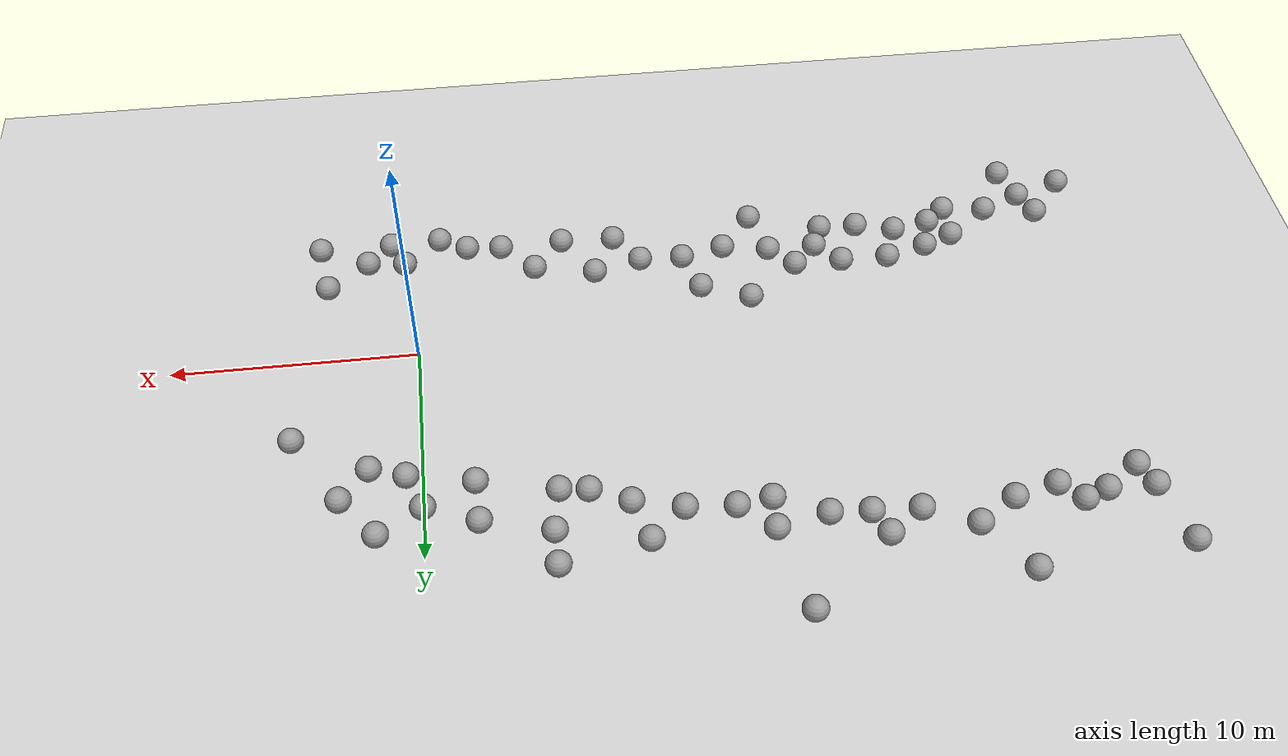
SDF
<sdf version="1.6">
 <world name="default">
  <model name="ground_plane">
   <static>1</static>
   <link name="link">
    <collision name="collision">
     <geometry><plane><normal>0 0 1</normal><size>100 100</size></plane></geometry>
     <surface><friction><ode><mu>100</mu><mu2>50</mu2></ode></friction></surface>
    </collision>
    <visual name="visual">
     <cast_shadows>0</cast_shadows>
     <geometry><plane><normal>0 0 1</normal><size>100 100</size></plane></geometry>
     <material>
      <script><uri>file://media/materials/scripts/gazebo.material</uri><name>Gazebo/Grey</name></script>
     </material>
    </visual>
   </link>
  </model>
  <model name="unit_sphere_0_clone_45">
   <pose>-24.6013 10.3687 0.5 0 -0 0</pose>
   <link name="link">
    <inertial>
     <mass>1</mass>
     <inertia><ixx>0.1</ixx><ixy>0</ixy><ixz>0</ixz><iyy>0.1</iyy><iyz>0</iyz><izz>0.1</izz></inertia>
    </inertial>
    <collision name="collision"><geometry><sphere><radius>0.5</radius></sphere></geometry></collision>
    <visual name="visual">
     <geometry><sphere><radius>0.5</radius></sphere></geometry>
     <material>
      <script><name>Gazebo/Grey</name><uri>file://media/materials/scripts/gazebo.material</uri></script>
     </material>
    </visual>
   </link>
  </model>
  <model name="unit_sphere_0_clone_46">
   <pose>-17.0385 11.0775 0.5 0 -0 0</pose>
   <link name="link">
    <inertial>
     <mass>1</mass>
     <inertia><ixx>0.1</ixx><ixy>0</ixy><ixz>0</ixz><iyy>0.1</iyy><iyz>0</iyz><izz>0.1</izz></inertia>
    </inertial>
    <collision name="collision"><geometry><sphere><radius>0.5</radius></sphere></geometry></collision>
    <visual name="visual">
     <geometry><sphere><radius>0.5</radius></sphere></geometry>
     <material>
      <script><name>Gazebo/Grey</name><uri>file://media/materials/scripts/gazebo.material</uri></script>
     </material>
    </visual>
   </link>
  </model>
  <model name="unit_sphere_0_clone_47">
   <pose>-8.29138 10.353 0.5 0 -0 0</pose>
   <link name="link">
    <inertial>
     <mass>1</mass>
     <inertia><ixx>0.1</ixx><ixy>0</ixy><ixz>0</ixz><iyy>0.1</iyy><iyz>0</iyz><izz>0.1</izz></inertia>
    </inertial>
    <collision name="collision"><geometry><sphere><radius>0.5</radius></sphere></geometry></collision>
    <visual name="visual">
     <geometry><sphere><radius>0.5</radius></sphere></geometry>
     <material>
      <script><name>Gazebo/Grey</name><uri>file://media/materials/scripts/gazebo.material</uri></script>
     </material>
    </visual>
   </link>
  </model>
  <model name="unit_sphere_0_clone_48">
   <pose>-2.06402 8.83003 0.5 0 -0 0</pose>
   <link name="link">
    <inertial>
     <mass>1</mass>
     <inertia><ixx>0.1</ixx><ixy>0</ixy><ixz>0</ixz><iyy>0.1</iyy><iyz>0</iyz><izz>0.1</izz></inertia>
    </inertial>
    <collision name="collision"><geometry><sphere><radius>0.5</radius></sphere></geometry></collision>
    <visual name="visual">
     <geometry><sphere><radius>0.5</radius></sphere></geometry>
     <material>
      <script><name>Gazebo/Grey</name><uri>file://media/materials/scripts/gazebo.material</uri></script>
     </material>
    </visual>
   </link>
  </model>
  <model name="unit_sphere_0_clone_49">
   <pose>3.12178 7.33825 0.5 0 -0 0</pose>
   <link name="link">
    <inertial>
     <mass>1</mass>
     <inertia><ixx>0.1</ixx><ixy>0</ixy><ixz>0</ixz><iyy>0.1</iyy><iyz>0</iyz><izz>0.1</izz></inertia>
    </inertial>
    <collision name="collision"><geometry><sphere><radius>0.5</radius></sphere></geometry></collision>
    <visual name="visual">
     <geometry><sphere><radius>0.5</radius></sphere></geometry>
     <material>
      <script><name>Gazebo/Grey</name><uri>file://media/materials/scripts/gazebo.material</uri></script>
     </material>
    </visual>
   </link>
  </model>
  <model name="unit_sphere_0_clone_65">
   <pose>-24.7963 -5.36295 0.5 0 -0 0</pose>
   <link name="link">
    <inertial>
     <mass>1</mass>
     <inertia><ixx>0.1</ixx><ixy>0</ixy><ixz>0</ixz><iyy>0.1</iyy><iyz>0</iyz><izz>0.1</izz></inertia>
    </inertial>
    <collision name="collision"><geometry><sphere><radius>0.5</radius></sphere></geometry></collision>
    <visual name="visual">
     <geometry><sphere><radius>0.5</radius></sphere></geometry>
     <material>
      <script><name>Gazebo/Grey</name><uri>file://media/materials/scripts/gazebo.material</uri></script>
     </material>
    </visual>
   </link>
  </model>
  <model name="unit_sphere_0_clone_66">
   <pose>-17.4237 -5.03519 0.5 0 -0 0</pose>
   <link name="link">
    <inertial>
     <mass>1</mass>
     <inertia><ixx>0.1</ixx><ixy>0</ixy><ixz>0</ixz><iyy>0.1</iyy><iyz>0</iyz><izz>0.1</izz></inertia>
    </inertial>
    <collision name="collision"><geometry><sphere><radius>0.5</radius></sphere></geometry></collision>
    <visual name="visual">
     <geometry><sphere><radius>0.5</radius></sphere></geometry>
     <material>
      <script><name>Gazebo/Grey</name><uri>file://media/materials/scripts/gazebo.material</uri></script>
     </material>
    </visual>
   </link>
  </model>
  <model name="unit_sphere_0_clone_67">
   <pose>-8.45682 -5.37674 0.5 0 -0 0</pose>
   <link name="link">
    <inertial>
     <mass>1</mass>
     <inertia><ixx>0.1</ixx><ixy>0</ixy><ixz>0</ixz><iyy>0.1</iyy><iyz>0</iyz><izz>0.1</izz></inertia>
    </inertial>
    <collision name="collision"><geometry><sphere><radius>0.5</radius></sphere></geometry></collision>
    <visual name="visual">
     <geometry><sphere><radius>0.5</radius></sphere></geometry>
     <material>
      <script><name>Gazebo/Grey</name><uri>file://media/materials/scripts/gazebo.material</uri></script>
     </material>
    </visual>
   </link>
  </model>
  <model name="unit_sphere_0_clone_68">
   <pose>-3.64738 -5.35577 0.5 0 -0 0</pose>
   <link name="link">
    <inertial>
     <mass>1</mass>
     <inertia><ixx>0.1</ixx><ixy>0</ixy><ixz>0</ixz><iyy>0.1</iyy><iyz>0</iyz><izz>0.1</izz></inertia>
    </inertial>
    <collision name="collision"><geometry><sphere><radius>0.5</radius></sphere></geometry></collision>
    <visual name="visual">
     <geometry><sphere><radius>0.5</radius></sphere></geometry>
     <material>
      <script><name>Gazebo/Grey</name><uri>file://media/materials/scripts/gazebo.material</uri></script>
     </material>
    </visual>
   </link>
  </model>
  <model name="unit_sphere_0_clone_69">
   <pose>0.457119 -4.82896 0.5 0 -0 0</pose>
   <link name="link">
    <inertial>
     <mass>1</mass>
     <inertia><ixx>0.1</ixx><ixy>0</ixy><ixz>0</ixz><iyy>0.1</iyy><iyz>0</iyz><izz>0.1</izz></inertia>
    </inertial>
    <collision name="collision"><geometry><sphere><radius>0.5</radius></sphere></geometry></collision>
    <visual name="visual">
     <geometry><sphere><radius>0.5</radius></sphere></geometry>
     <material>
      <script><name>Gazebo/Grey</name><uri>file://media/materials/scripts/gazebo.material</uri></script>
     </material>
    </visual>
   </link>
  </model>
  <model name="unit_sphere_0_clone_91">
   <pose>-26.4934 -6.08641 0.5 0 -0 0</pose>
   <link name="link">
    <inertial>
     <mass>1</mass>
     <inertia><ixx>0.1</ixx><ixy>0</ixy><ixz>0</ixz><iyy>0.1</iyy><iyz>0</iyz><izz>0.1</izz></inertia>
    </inertial>
    <collision name="collision"><geometry><sphere><radius>0.5</radius></sphere></geometry></collision>
    <visual name="visual">
     <geometry><sphere><radius>0.5</radius></sphere></geometry>
     <material>
      <script><name>Gazebo/Grey</name><uri>file://media/materials/scripts/gazebo.material</uri></script>
     </material>
    </visual>
   </link>
  </model>
  <model name="unit_sphere_0_clone_92">
   <pose>-21.74 -3.48856 0.5 0 -0 0</pose>
   <link name="link">
    <inertial>
     <mass>1</mass>
     <inertia><ixx>0.1</ixx><ixy>0</ixy><ixz>0</ixz><iyy>0.1</iyy><iyz>0</iyz><izz>0.1</izz></inertia>
    </inertial>
    <collision name="collision"><geometry><sphere><radius>0.5</radius></sphere></geometry></collision>
    <visual name="visual">
     <geometry><sphere><radius>0.5</radius></sphere></geometry>
     <material>
      <script><name>Gazebo/Grey</name><uri>file://media/materials/scripts/gazebo.material</uri></script>
     </material>
    </visual>
   </link>
  </model>
  <model name="unit_sphere_0_clone_93">
   <pose>-11.8546 -2.13799 0.5 0 -0 0</pose>
   <link name="link">
    <inertial>
     <mass>1</mass>
     <inertia><ixx>0.1</ixx><ixy>0</ixy><ixz>0</ixz><iyy>0.1</iyy><iyz>0</iyz><izz>0.1</izz></inertia>
    </inertial>
    <collision name="collision"><geometry><sphere><radius>0.5</radius></sphere></geometry></collision>
    <visual name="visual">
     <geometry><sphere><radius>0.5</radius></sphere></geometry>
     <material>
      <script><name>Gazebo/Grey</name><uri>file://media/materials/scripts/gazebo.material</uri></script>
     </material>
    </visual>
   </link>
  </model>
  <model name="unit_sphere_0_clone_94">
   <pose>-16 -3 0.5 0 -0 0</pose>
   <link name="link">
    <inertial>
     <mass>1</mass>
     <inertia><ixx>0.1</ixx><ixy>0</ixy><ixz>0</ixz><iyy>0.1</iyy><iyz>0</iyz><izz>0.1</izz></inertia>
    </inertial>
    <collision name="collision"><geometry><sphere><radius>0.5</radius></sphere></geometry></collision>
    <visual name="visual">
     <geometry><sphere><radius>0.5</radius></sphere></geometry>
     <material>
      <script><name>Gazebo/Grey</name><uri>file://media/materials/scripts/gazebo.material</uri></script>
     </material>
    </visual>
   </link>
  </model>
  <model name="unit_sphere_0_clone_106">
   <pose>-28.0971 12.6052 0.5 0 -0 0</pose>
   <link name="link">
    <inertial>
     <mass>1</mass>
     <inertia><ixx>0.1</ixx><ixy>0</ixy><ixz>0</ixz><iyy>0.1</iyy><iyz>0</iyz><izz>0.1</izz></inertia>
    </inertial>
    <collision name="collision"><geometry><sphere><radius>0.5</radius></sphere></geometry></collision>
    <visual name="visual">
     <geometry><sphere><radius>0.5</radius></sphere></geometry>
     <material>
      <script><name>Gazebo/Grey</name><uri>file://media/materials/scripts/gazebo.material</uri></script>
     </material>
    </visual>
   </link>
  </model>
  <model name="unit_sphere_0_clone_107">
   <pose>-27 9 0.5 0 -0 0</pose>
   <link name="link">
    <inertial>
     <mass>1</mass>
     <inertia><ixx>0.1</ixx><ixy>0</ixy><ixz>0</ixz><iyy>0.1</iyy><iyz>0</iyz><izz>0.1</izz></inertia>
    </inertial>
    <collision name="collision"><geometry><sphere><radius>0.5</radius></sphere></geometry></collision>
    <visual name="visual">
     <geometry><sphere><radius>0.5</radius></sphere></geometry>
     <material>
      <script><name>Gazebo/Grey</name><uri>file://media/materials/scripts/gazebo.material</uri></script>
     </material>
    </visual>
   </link>
  </model>
  <model name="unit_sphere_0_clone_108">
   <pose>-21.996 13.1864 0.5 0 -0 0</pose>
   <link name="link">
    <inertial>
     <mass>1</mass>
     <inertia><ixx>0.1</ixx><ixy>0</ixy><ixz>0</ixz><iyy>0.1</iyy><iyz>0</iyz><izz>0.1</izz></inertia>
    </inertial>
    <collision name="collision"><geometry><sphere><radius>0.5</radius></sphere></geometry></collision>
    <visual name="visual">
     <geometry><sphere><radius>0.5</radius></sphere></geometry>
     <material>
      <script><name>Gazebo/Grey</name><uri>file://media/materials/scripts/gazebo.material</uri></script>
     </material>
    </visual>
   </link>
  </model>
  <model name="unit_sphere_0_clone_109">
   <pose>-13.6837 13.9819 0.5 0 -0 0</pose>
   <link name="link">
    <inertial>
     <mass>1</mass>
     <inertia><ixx>0.1</ixx><ixy>0</ixy><ixz>0</ixz><iyy>0.1</iyy><iyz>0</iyz><izz>0.1</izz></inertia>
    </inertial>
    <collision name="collision"><geometry><sphere><radius>0.5</radius></sphere></geometry></collision>
    <visual name="visual">
     <geometry><sphere><radius>0.5</radius></sphere></geometry>
     <material>
      <script><name>Gazebo/Grey</name><uri>file://media/materials/scripts/gazebo.material</uri></script>
     </material>
    </visual>
   </link>
  </model>
  <model name="unit_sphere_0_clone_110">
   <pose>-11.6248 9.21536 0.5 0 -0 0</pose>
   <link name="link">
    <inertial>
     <mass>1</mass>
     <inertia><ixx>0.1</ixx><ixy>0</ixy><ixz>0</ixz><iyy>0.1</iyy><iyz>0</iyz><izz>0.1</izz></inertia>
    </inertial>
    <collision name="collision"><geometry><sphere><radius>0.5</radius></sphere></geometry></collision>
    <visual name="visual">
     <geometry><sphere><radius>0.5</radius></sphere></geometry>
     <material>
      <script><name>Gazebo/Grey</name><uri>file://media/materials/scripts/gazebo.material</uri></script>
     </material>
    </visual>
   </link>
  </model>
  <model name="unit_sphere_0_clone_111">
   <pose>-12.934 10.3721 0.5 0 -0 0</pose>
   <link name="link">
    <inertial>
     <mass>1</mass>
     <inertia><ixx>0.1</ixx><ixy>0</ixy><ixz>0</ixz><iyy>0.1</iyy><iyz>0</iyz><izz>0.1</izz></inertia>
    </inertial>
    <collision name="collision"><geometry><sphere><radius>0.5</radius></sphere></geometry></collision>
    <visual name="visual">
     <geometry><sphere><radius>0.5</radius></sphere></geometry>
     <material>
      <script><name>Gazebo/Grey</name><uri>file://media/materials/scripts/gazebo.material</uri></script>
     </material>
    </visual>
   </link>
  </model>
  <model name="unit_sphere_0_clone_112">
   <pose>-4.81926 11.0803 0.5 0 -0 0</pose>
   <link name="link">
    <inertial>
     <mass>1</mass>
     <inertia><ixx>0.1</ixx><ixy>0</ixy><ixz>0</ixz><iyy>0.1</iyy><iyz>0</iyz><izz>0.1</izz></inertia>
    </inertial>
    <collision name="collision"><geometry><sphere><radius>0.5</radius></sphere></geometry></collision>
    <visual name="visual">
     <geometry><sphere><radius>0.5</radius></sphere></geometry>
     <material>
      <script><name>Gazebo/Grey</name><uri>file://media/materials/scripts/gazebo.material</uri></script>
     </material>
    </visual>
   </link>
  </model>
  <model name="unit_sphere_0_clone_113">
   <pose>-5.10187 7.7334 0.5 0.014407 0.122545 0.000898</pose>
   <link name="link">
    <inertial>
     <mass>1</mass>
     <inertia><ixx>0.1</ixx><ixy>0</ixy><ixz>0</ixz><iyy>0.1</iyy><iyz>0</iyz><izz>0.1</izz></inertia>
    </inertial>
    <collision name="collision"><geometry><sphere><radius>0.5</radius></sphere></geometry></collision>
    <visual name="visual">
     <geometry><sphere><radius>0.5</radius></sphere></geometry>
     <material>
      <script><name>Gazebo/Grey</name><uri>file://media/materials/scripts/gazebo.material</uri></script>
     </material>
    </visual>
   </link>
  </model>
  <model name="unit_sphere_0_clone_114">
   <pose>1.75236 9.06116 0.5 0 -0 0</pose>
   <link name="link">
    <inertial>
     <mass>1</mass>
     <inertia><ixx>0.1</ixx><ixy>0</ixy><ixz>0</ixz><iyy>0.1</iyy><iyz>0</iyz><izz>0.1</izz></inertia>
    </inertial>
    <collision name="collision"><geometry><sphere><radius>0.5</radius></sphere></geometry></collision>
    <visual name="visual">
     <geometry><sphere><radius>0.5</radius></sphere></geometry>
     <material>
      <script><name>Gazebo/Grey</name><uri>file://media/materials/scripts/gazebo.material</uri></script>
     </material>
    </visual>
   </link>
  </model>
  <model name="unit_sphere_1_clone_104">
   <pose>-28.479 -6.73114 0.5 0 -0 0</pose>
   <link name="link">
    <inertial>
     <mass>1</mass>
     <inertia><ixx>0.1</ixx><ixy>0</ixy><ixz>0</ixz><iyy>0.1</iyy><iyz>0</iyz><izz>0.1</izz></inertia>
    </inertial>
    <collision name="collision"><geometry><sphere><radius>0.5</radius></sphere></geometry></collision>
    <visual name="visual">
     <geometry><sphere><radius>0.5</radius></sphere></geometry>
     <material>
      <script><name>Gazebo/Grey</name><uri>file://media/materials/scripts/gazebo.material</uri></script>
     </material>
    </visual>
   </link>
  </model>
  <model name="unit_sphere_1_clone_105">
   <pose>-27 -5 0.5 0 -0 0</pose>
   <link name="link">
    <inertial>
     <mass>1</mass>
     <inertia><ixx>0.1</ixx><ixy>0</ixy><ixz>0</ixz><iyy>0.1</iyy><iyz>0</iyz><izz>0.1</izz></inertia>
    </inertial>
    <collision name="collision"><geometry><sphere><radius>0.5</radius></sphere></geometry></collision>
    <visual name="visual">
     <geometry><sphere><radius>0.5</radius></sphere></geometry>
     <material>
      <script><name>Gazebo/Grey</name><uri>file://media/materials/scripts/gazebo.material</uri></script>
     </material>
    </visual>
   </link>
  </model>
  <model name="unit_sphere_1_clone_106">
   <pose>-26 -7.55852 0.5 0 -0 0</pose>
   <link name="link">
    <inertial>
     <mass>1</mass>
     <inertia><ixx>0.1</ixx><ixy>0</ixy><ixz>0</ixz><iyy>0.1</iyy><iyz>0</iyz><izz>0.1</izz></inertia>
    </inertial>
    <collision name="collision"><geometry><sphere><radius>0.5</radius></sphere></geometry></collision>
    <visual name="visual">
     <geometry><sphere><radius>0.5</radius></sphere></geometry>
     <material>
      <script><name>Gazebo/Grey</name><uri>file://media/materials/scripts/gazebo.material</uri></script>
     </material>
    </visual>
   </link>
  </model>
  <model name="unit_sphere_1_clone_107">
   <pose>-23 -5.57963 0.5 0 -0 0</pose>
   <link name="link">
    <inertial>
     <mass>1</mass>
     <inertia><ixx>0.1</ixx><ixy>0</ixy><ixz>0</ixz><iyy>0.1</iyy><iyz>0</iyz><izz>0.1</izz></inertia>
    </inertial>
    <collision name="collision"><geometry><sphere><radius>0.5</radius></sphere></geometry></collision>
    <visual name="visual">
     <geometry><sphere><radius>0.5</radius></sphere></geometry>
     <material>
      <script><name>Gazebo/Grey</name><uri>file://media/materials/scripts/gazebo.material</uri></script>
     </material>
    </visual>
   </link>
  </model>
  <model name="unit_sphere_1_clone_108">
   <pose>-22.1653 -4.89296 0.5 0 -0 0</pose>
   <link name="link">
    <inertial>
     <mass>1</mass>
     <inertia><ixx>0.1</ixx><ixy>0</ixy><ixz>0</ixz><iyy>0.1</iyy><iyz>0</iyz><izz>0.1</izz></inertia>
    </inertial>
    <collision name="collision"><geometry><sphere><radius>0.5</radius></sphere></geometry></collision>
    <visual name="visual">
     <geometry><sphere><radius>0.5</radius></sphere></geometry>
     <material>
      <script><name>Gazebo/Grey</name><uri>file://media/materials/scripts/gazebo.material</uri></script>
     </material>
    </visual>
   </link>
  </model>
  <model name="unit_sphere_1_clone_109">
   <pose>-23 -4 0.5 0 -0 0</pose>
   <link name="link">
    <inertial>
     <mass>1</mass>
     <inertia><ixx>0.1</ixx><ixy>0</ixy><ixz>0</ixz><iyy>0.1</iyy><iyz>0</iyz><izz>0.1</izz></inertia>
    </inertial>
    <collision name="collision"><geometry><sphere><radius>0.5</radius></sphere></geometry></collision>
    <visual name="visual">
     <geometry><sphere><radius>0.5</radius></sphere></geometry>
     <material>
      <script><name>Gazebo/Grey</name><uri>file://media/materials/scripts/gazebo.material</uri></script>
     </material>
    </visual>
   </link>
  </model>
  <model name="unit_sphere_1_clone_110">
   <pose>-20.5952 -4.57551 0.5 0 -0 0</pose>
   <link name="link">
    <inertial>
     <mass>1</mass>
     <inertia><ixx>0.1</ixx><ixy>0</ixy><ixz>0</ixz><iyy>0.1</iyy><iyz>0</iyz><izz>0.1</izz></inertia>
    </inertial>
    <collision name="collision"><geometry><sphere><radius>0.5</radius></sphere></geometry></collision>
    <visual name="visual">
     <geometry><sphere><radius>0.5</radius></sphere></geometry>
     <material>
      <script><name>Gazebo/Grey</name><uri>file://media/materials/scripts/gazebo.material</uri></script>
     </material>
    </visual>
   </link>
  </model>
  <model name="unit_sphere_1_clone_111">
   <pose>-20 -3 0.5 0 -0 0</pose>
   <link name="link">
    <inertial>
     <mass>1</mass>
     <inertia><ixx>0.1</ixx><ixy>0</ixy><ixz>0</ixz><iyy>0.1</iyy><iyz>0</iyz><izz>0.1</izz></inertia>
    </inertial>
    <collision name="collision"><geometry><sphere><radius>0.5</radius></sphere></geometry></collision>
    <visual name="visual">
     <geometry><sphere><radius>0.5</radius></sphere></geometry>
     <material>
      <script><name>Gazebo/Grey</name><uri>file://media/materials/scripts/gazebo.material</uri></script>
     </material>
    </visual>
   </link>
  </model>
  <model name="unit_sphere_1_clone_112">
   <pose>-19 -5 0.5 0 -0 0</pose>
   <link name="link">
    <inertial>
     <mass>1</mass>
     <inertia><ixx>0.1</ixx><ixy>0</ixy><ixz>0</ixz><iyy>0.1</iyy><iyz>0</iyz><izz>0.1</izz></inertia>
    </inertial>
    <collision name="collision"><geometry><sphere><radius>0.5</radius></sphere></geometry></collision>
    <visual name="visual">
     <geometry><sphere><radius>0.5</radius></sphere></geometry>
     <material>
      <script><name>Gazebo/Grey</name><uri>file://media/materials/scripts/gazebo.material</uri></script>
     </material>
    </visual>
   </link>
  </model>
  <model name="unit_sphere_1_clone_113">
   <pose>-18 -3 0.5 0 -0 0</pose>
   <link name="link">
    <inertial>
     <mass>1</mass>
     <inertia><ixx>0.1</ixx><ixy>0</ixy><ixz>0</ixz><iyy>0.1</iyy><iyz>0</iyz><izz>0.1</izz></inertia>
    </inertial>
    <collision name="collision"><geometry><sphere><radius>0.5</radius></sphere></geometry></collision>
    <visual name="visual">
     <geometry><sphere><radius>0.5</radius></sphere></geometry>
     <material>
      <script><name>Gazebo/Grey</name><uri>file://media/materials/scripts/gazebo.material</uri></script>
     </material>
    </visual>
   </link>
  </model>
  <model name="unit_sphere_1_clone_114">
   <pose>-17 -4 0.5 0 -0 0</pose>
   <link name="link">
    <inertial>
     <mass>1</mass>
     <inertia><ixx>0.1</ixx><ixy>0</ixy><ixz>0</ixz><iyy>0.1</iyy><iyz>0</iyz><izz>0.1</izz></inertia>
    </inertial>
    <collision name="collision"><geometry><sphere><radius>0.5</radius></sphere></geometry></collision>
    <visual name="visual">
     <geometry><sphere><radius>0.5</radius></sphere></geometry>
     <material>
      <script><name>Gazebo/Grey</name><uri>file://media/materials/scripts/gazebo.material</uri></script>
     </material>
    </visual>
   </link>
  </model>
  <model name="unit_sphere_1_clone_115">
   <pose>-15 -4 0.5 0 -0 0</pose>
   <link name="link">
    <inertial>
     <mass>1</mass>
     <inertia><ixx>0.1</ixx><ixy>0</ixy><ixz>0</ixz><iyy>0.1</iyy><iyz>0</iyz><izz>0.1</izz></inertia>
    </inertial>
    <collision name="collision"><geometry><sphere><radius>0.5</radius></sphere></geometry></collision>
    <visual name="visual">
     <geometry><sphere><radius>0.5</radius></sphere></geometry>
     <material>
      <script><name>Gazebo/Grey</name><uri>file://media/materials/scripts/gazebo.material</uri></script>
     </material>
    </visual>
   </link>
  </model>
  <model name="unit_sphere_1_clone_116">
   <pose>-13.0794 -4.33675 0.5 0 -0 0</pose>
   <link name="link">
    <inertial>
     <mass>1</mass>
     <inertia><ixx>0.1</ixx><ixy>0</ixy><ixz>0</ixz><iyy>0.1</iyy><iyz>0</iyz><izz>0.1</izz></inertia>
    </inertial>
    <collision name="collision"><geometry><sphere><radius>0.5</radius></sphere></geometry></collision>
    <visual name="visual">
     <geometry><sphere><radius>0.5</radius></sphere></geometry>
     <material>
      <script><name>Gazebo/Grey</name><uri>file://media/materials/scripts/gazebo.material</uri></script>
     </material>
    </visual>
   </link>
  </model>
  <model name="unit_sphere_1_clone_117">
   <pose>-11.2812 -3.93493 0.5 0 -0 0</pose>
   <link name="link">
    <inertial>
     <mass>1</mass>
     <inertia><ixx>0.1</ixx><ixy>0</ixy><ixz>0</ixz><iyy>0.1</iyy><iyz>0</iyz><izz>0.1</izz></inertia>
    </inertial>
    <collision name="collision"><geometry><sphere><radius>0.5</radius></sphere></geometry></collision>
    <visual name="visual">
     <geometry><sphere><radius>0.5</radius></sphere></geometry>
     <material>
      <script><name>Gazebo/Grey</name><uri>file://media/materials/scripts/gazebo.material</uri></script>
     </material>
    </visual>
   </link>
  </model>
  <model name="unit_sphere_1_clone_118">
   <pose>-13.8535 -1.32096 0.5 0 -0 0</pose>
   <link name="link">
    <inertial>
     <mass>1</mass>
     <inertia><ixx>0.1</ixx><ixy>0</ixy><ixz>0</ixz><iyy>0.1</iyy><iyz>0</iyz><izz>0.1</izz></inertia>
    </inertial>
    <collision name="collision"><geometry><sphere><radius>0.5</radius></sphere></geometry></collision>
    <visual name="visual">
     <geometry><sphere><radius>0.5</radius></sphere></geometry>
     <material>
      <script><name>Gazebo/Grey</name><uri>file://media/materials/scripts/gazebo.material</uri></script>
     </material>
    </visual>
   </link>
  </model>
  <model name="unit_sphere_1_clone_119">
   <pose>-14.4611 -6 0.5 0 -0 0</pose>
   <link name="link">
    <inertial>
     <mass>1</mass>
     <inertia><ixx>0.1</ixx><ixy>0</ixy><ixz>0</ixz><iyy>0.1</iyy><iyz>0</iyz><izz>0.1</izz></inertia>
    </inertial>
    <collision name="collision"><geometry><sphere><radius>0.5</radius></sphere></geometry></collision>
    <visual name="visual">
     <geometry><sphere><radius>0.5</radius></sphere></geometry>
     <material>
      <script><name>Gazebo/Grey</name><uri>file://media/materials/scripts/gazebo.material</uri></script>
     </material>
    </visual>
   </link>
  </model>
  <model name="unit_sphere_1_clone_120">
   <pose>-9.48684 -4 0.5 0 -0 0</pose>
   <link name="link">
    <inertial>
     <mass>1</mass>
     <inertia><ixx>0.1</ixx><ixy>0</ixy><ixz>0</ixz><iyy>0.1</iyy><iyz>0</iyz><izz>0.1</izz></inertia>
    </inertial>
    <collision name="collision"><geometry><sphere><radius>0.5</radius></sphere></geometry></collision>
    <visual name="visual">
     <geometry><sphere><radius>0.5</radius></sphere></geometry>
     <material>
      <script><name>Gazebo/Grey</name><uri>file://media/materials/scripts/gazebo.material</uri></script>
     </material>
    </visual>
   </link>
  </model>
  <model name="unit_sphere_1_clone_121">
   <pose>-7.5129 -3.49486 0.5 0 -0 0</pose>
   <link name="link">
    <inertial>
     <mass>1</mass>
     <inertia><ixx>0.1</ixx><ixy>0</ixy><ixz>0</ixz><iyy>0.1</iyy><iyz>0</iyz><izz>0.1</izz></inertia>
    </inertial>
    <collision name="collision"><geometry><sphere><radius>0.5</radius></sphere></geometry></collision>
    <visual name="visual">
     <geometry><sphere><radius>0.5</radius></sphere></geometry>
     <material>
      <script><name>Gazebo/Grey</name><uri>file://media/materials/scripts/gazebo.material</uri></script>
     </material>
    </visual>
   </link>
  </model>
  <model name="unit_sphere_1_clone_122">
   <pose>-5 -4 0.5 0 -0 0</pose>
   <link name="link">
    <inertial>
     <mass>1</mass>
     <inertia><ixx>0.1</ixx><ixy>0</ixy><ixz>0</ixz><iyy>0.1</iyy><iyz>0</iyz><izz>0.1</izz></inertia>
    </inertial>
    <collision name="collision"><geometry><sphere><radius>0.5</radius></sphere></geometry></collision>
    <visual name="visual">
     <geometry><sphere><radius>0.5</radius></sphere></geometry>
     <material>
      <script><name>Gazebo/Grey</name><uri>file://media/materials/scripts/gazebo.material</uri></script>
     </material>
    </visual>
   </link>
  </model>
  <model name="unit_sphere_1_clone_123">
   <pose>3.67311 -3.72889 0.5 0 -0 0</pose>
   <link name="link">
    <inertial>
     <mass>1</mass>
     <inertia><ixx>0.1</ixx><ixy>0</ixy><ixz>0</ixz><iyy>0.1</iyy><iyz>0</iyz><izz>0.1</izz></inertia>
    </inertial>
    <collision name="collision"><geometry><sphere><radius>0.5</radius></sphere></geometry></collision>
    <visual name="visual">
     <geometry><sphere><radius>0.5</radius></sphere></geometry>
     <material>
      <script><name>Gazebo/Grey</name><uri>file://media/materials/scripts/gazebo.material</uri></script>
     </material>
    </visual>
   </link>
  </model>
  <model name="unit_sphere_1_clone_124">
   <pose>4 -6 0.5 0 -0 0</pose>
   <link name="link">
    <inertial>
     <mass>1</mass>
     <inertia><ixx>0.1</ixx><ixy>0</ixy><ixz>0</ixz><iyy>0.1</iyy><iyz>0</iyz><izz>0.1</izz></inertia>
    </inertial>
    <collision name="collision"><geometry><sphere><radius>0.5</radius></sphere></geometry></collision>
    <visual name="visual">
     <geometry><sphere><radius>0.5</radius></sphere></geometry>
     <material>
      <script><name>Gazebo/Grey</name><uri>file://media/materials/scripts/gazebo.material</uri></script>
     </material>
    </visual>
   </link>
  </model>
  <model name="unit_sphere_1_clone_125">
   <pose>2 -5 0.5 0 -0 0</pose>
   <link name="link">
    <inertial>
     <mass>1</mass>
     <inertia><ixx>0.1</ixx><ixy>0</ixy><ixz>0</ixz><iyy>0.1</iyy><iyz>0</iyz><izz>0.1</izz></inertia>
    </inertial>
    <collision name="collision"><geometry><sphere><radius>0.5</radius></sphere></geometry></collision>
    <visual name="visual">
     <geometry><sphere><radius>0.5</radius></sphere></geometry>
     <material>
      <script><name>Gazebo/Grey</name><uri>file://media/materials/scripts/gazebo.material</uri></script>
     </material>
    </visual>
   </link>
  </model>
  <model name="unit_sphere_1_clone_126">
   <pose>1 -6 0.5 0 -0 0</pose>
   <link name="link">
    <inertial>
     <mass>1</mass>
     <inertia><ixx>0.1</ixx><ixy>0</ixy><ixz>0</ixz><iyy>0.1</iyy><iyz>0</iyz><izz>0.1</izz></inertia>
    </inertial>
    <collision name="collision"><geometry><sphere><radius>0.5</radius></sphere></geometry></collision>
    <visual name="visual">
     <geometry><sphere><radius>0.5</radius></sphere></geometry>
     <material>
      <script><name>Gazebo/Grey</name><uri>file://media/materials/scripts/gazebo.material</uri></script>
     </material>
    </visual>
   </link>
  </model>
  <model name="unit_sphere_1_clone_127">
   <pose>-2.20363 -5.47718 0.5 0 -0 0</pose>
   <link name="link">
    <inertial>
     <mass>1</mass>
     <inertia><ixx>0.1</ixx><ixy>0</ixy><ixz>0</ixz><iyy>0.1</iyy><iyz>0</iyz><izz>0.1</izz></inertia>
    </inertial>
    <collision name="collision"><geometry><sphere><radius>0.5</radius></sphere></geometry></collision>
    <visual name="visual">
     <geometry><sphere><radius>0.5</radius></sphere></geometry>
     <material>
      <script><name>Gazebo/Grey</name><uri>file://media/materials/scripts/gazebo.material</uri></script>
     </material>
    </visual>
   </link>
  </model>
  <model name="unit_sphere_1_clone_128">
   <pose>-1.04966 -6.09086 0.5 0 -0 0</pose>
   <link name="link">
    <inertial>
     <mass>1</mass>
     <inertia><ixx>0.1</ixx><ixy>0</ixy><ixz>0</ixz><iyy>0.1</iyy><iyz>0</iyz><izz>0.1</izz></inertia>
    </inertial>
    <collision name="collision"><geometry><sphere><radius>0.5</radius></sphere></geometry></collision>
    <visual name="visual">
     <geometry><sphere><radius>0.5</radius></sphere></geometry>
     <material>
      <script><name>Gazebo/Grey</name><uri>file://media/materials/scripts/gazebo.material</uri></script>
     </material>
    </visual>
   </link>
  </model>
  <model name="unit_sphere_1_clone_129">
   <pose>-6.24302 -5.45743 0.5 0 -0 0</pose>
   <link name="link">
    <inertial>
     <mass>1</mass>
     <inertia><ixx>0.1</ixx><ixy>0</ixy><ixz>0</ixz><iyy>0.1</iyy><iyz>0</iyz><izz>0.1</izz></inertia>
    </inertial>
    <collision name="collision"><geometry><sphere><radius>0.5</radius></sphere></geometry></collision>
    <visual name="visual">
     <geometry><sphere><radius>0.5</radius></sphere></geometry>
     <material>
      <script><name>Gazebo/Grey</name><uri>file://media/materials/scripts/gazebo.material</uri></script>
     </material>
    </visual>
   </link>
  </model>
  <model name="unit_sphere_1_clone_130">
   <pose>-4.80652 9.57054 0.5 0 -0 0</pose>
   <link name="link">
    <inertial>
     <mass>1</mass>
     <inertia><ixx>0.1</ixx><ixy>0</ixy><ixz>0</ixz><iyy>0.1</iyy><iyz>0</iyz><izz>0.1</izz></inertia>
    </inertial>
    <collision name="collision"><geometry><sphere><radius>0.5</radius></sphere></geometry></collision>
    <visual name="visual">
     <geometry><sphere><radius>0.5</radius></sphere></geometry>
     <material>
      <script><name>Gazebo/Grey</name><uri>file://media/materials/scripts/gazebo.material</uri></script>
     </material>
    </visual>
   </link>
  </model>
  <model name="unit_sphere_1_clone_131">
   <pose>-6.21735 7.86384 0.5 -0.014446 -0.122066 0.000891</pose>
   <link name="link">
    <inertial>
     <mass>1</mass>
     <inertia><ixx>0.1</ixx><ixy>0</ixy><ixz>0</ixz><iyy>0.1</iyy><iyz>0</iyz><izz>0.1</izz></inertia>
    </inertial>
    <collision name="collision"><geometry><sphere><radius>0.5</radius></sphere></geometry></collision>
    <visual name="visual">
     <geometry><sphere><radius>0.5</radius></sphere></geometry>
     <material>
      <script><name>Gazebo/Grey</name><uri>file://media/materials/scripts/gazebo.material</uri></script>
     </material>
    </visual>
   </link>
  </model>
  <model name="unit_sphere_1_clone_132">
   <pose>-7.74511 8.57428 0.5 0 -0 0</pose>
   <link name="link">
    <inertial>
     <mass>1</mass>
     <inertia><ixx>0.1</ixx><ixy>0</ixy><ixz>0</ixz><iyy>0.1</iyy><iyz>0</iyz><izz>0.1</izz></inertia>
    </inertial>
    <collision name="collision"><geometry><sphere><radius>0.5</radius></sphere></geometry></collision>
    <visual name="visual">
     <geometry><sphere><radius>0.5</radius></sphere></geometry>
     <material>
      <script><name>Gazebo/Grey</name><uri>file://media/materials/scripts/gazebo.material</uri></script>
     </material>
    </visual>
   </link>
  </model>
  <model name="unit_sphere_1_clone_133">
   <pose>-9.69025 9.073 0.5 0 -0 0</pose>
   <link name="link">
    <inertial>
     <mass>1</mass>
     <inertia><ixx>0.1</ixx><ixy>0</ixy><ixz>0</ixz><iyy>0.1</iyy><iyz>0</iyz><izz>0.1</izz></inertia>
    </inertial>
    <collision name="collision"><geometry><sphere><radius>0.5</radius></sphere></geometry></collision>
    <visual name="visual">
     <geometry><sphere><radius>0.5</radius></sphere></geometry>
     <material>
      <script><name>Gazebo/Grey</name><uri>file://media/materials/scripts/gazebo.material</uri></script>
     </material>
    </visual>
   </link>
  </model>
  <model name="unit_sphere_1_clone_134">
   <pose>-13 9 0.5 0 -0 0</pose>
   <link name="link">
    <inertial>
     <mass>1</mass>
     <inertia><ixx>0.1</ixx><ixy>0</ixy><ixz>0</ixz><iyy>0.1</iyy><iyz>0</iyz><izz>0.1</izz></inertia>
    </inertial>
    <collision name="collision"><geometry><sphere><radius>0.5</radius></sphere></geometry></collision>
    <visual name="visual">
     <geometry><sphere><radius>0.5</radius></sphere></geometry>
     <material>
      <script><name>Gazebo/Grey</name><uri>file://media/materials/scripts/gazebo.material</uri></script>
     </material>
    </visual>
   </link>
  </model>
  <model name="unit_sphere_1_clone_135">
   <pose>-14.9877 9.91942 0.5 0 -0 0</pose>
   <link name="link">
    <inertial>
     <mass>1</mass>
     <inertia><ixx>0.1</ixx><ixy>0</ixy><ixz>0</ixz><iyy>0.1</iyy><iyz>0</iyz><izz>0.1</izz></inertia>
    </inertial>
    <collision name="collision"><geometry><sphere><radius>0.5</radius></sphere></geometry></collision>
    <visual name="visual">
     <geometry><sphere><radius>0.5</radius></sphere></geometry>
     <material>
      <script><name>Gazebo/Grey</name><uri>file://media/materials/scripts/gazebo.material</uri></script>
     </material>
    </visual>
   </link>
  </model>
  <model name="unit_sphere_1_clone_136">
   <pose>-16.5503 10.0177 0.5 0 -0 0</pose>
   <link name="link">
    <inertial>
     <mass>1</mass>
     <inertia><ixx>0.1</ixx><ixy>0</ixy><ixz>0</ixz><iyy>0.1</iyy><iyz>0</iyz><izz>0.1</izz></inertia>
    </inertial>
    <collision name="collision"><geometry><sphere><radius>0.5</radius></sphere></geometry></collision>
    <visual name="visual">
     <geometry><sphere><radius>0.5</radius></sphere></geometry>
     <material>
      <script><name>Gazebo/Grey</name><uri>file://media/materials/scripts/gazebo.material</uri></script>
     </material>
    </visual>
   </link>
  </model>
  <model name="unit_sphere_1_clone_137">
   <pose>-18.4264 10.1023 0.5 0 -0 0</pose>
   <link name="link">
    <inertial>
     <mass>1</mass>
     <inertia><ixx>0.1</ixx><ixy>0</ixy><ixz>0</ixz><iyy>0.1</iyy><iyz>0</iyz><izz>0.1</izz></inertia>
    </inertial>
    <collision name="collision"><geometry><sphere><radius>0.5</radius></sphere></geometry></collision>
    <visual name="visual">
     <geometry><sphere><radius>0.5</radius></sphere></geometry>
     <material>
      <script><name>Gazebo/Grey</name><uri>file://media/materials/scripts/gazebo.material</uri></script>
     </material>
    </visual>
   </link>
  </model>
  <model name="unit_sphere_1_clone_138">
   <pose>-20.4279 11 0.5 0 -0 0</pose>
   <link name="link">
    <inertial>
     <mass>1</mass>
     <inertia><ixx>0.1</ixx><ixy>0</ixy><ixz>0</ixz><iyy>0.1</iyy><iyz>0</iyz><izz>0.1</izz></inertia>
    </inertial>
    <collision name="collision"><geometry><sphere><radius>0.5</radius></sphere></geometry></collision>
    <visual name="visual">
     <geometry><sphere><radius>0.5</radius></sphere></geometry>
     <material>
      <script><name>Gazebo/Grey</name><uri>file://media/materials/scripts/gazebo.material</uri></script>
     </material>
    </visual>
   </link>
  </model>
  <model name="unit_sphere_1_clone_139">
   <pose>-22 10 0.5 0 -0 0</pose>
   <link name="link">
    <inertial>
     <mass>1</mass>
     <inertia><ixx>0.1</ixx><ixy>0</ixy><ixz>0</ixz><iyy>0.1</iyy><iyz>0</iyz><izz>0.1</izz></inertia>
    </inertial>
    <collision name="collision"><geometry><sphere><radius>0.5</radius></sphere></geometry></collision>
    <visual name="visual">
     <geometry><sphere><radius>0.5</radius></sphere></geometry>
     <material>
      <script><name>Gazebo/Grey</name><uri>file://media/materials/scripts/gazebo.material</uri></script>
     </material>
    </visual>
   </link>
  </model>
  <model name="unit_sphere_1_clone_140">
   <pose>-23.7516 9.56063 0.5 0 -0 0</pose>
   <link name="link">
    <inertial>
     <mass>1</mass>
     <inertia><ixx>0.1</ixx><ixy>0</ixy><ixz>0</ixz><iyy>0.1</iyy><iyz>0</iyz><izz>0.1</izz></inertia>
    </inertial>
    <collision name="collision"><geometry><sphere><radius>0.5</radius></sphere></geometry></collision>
    <visual name="visual">
     <geometry><sphere><radius>0.5</radius></sphere></geometry>
     <material>
      <script><name>Gazebo/Grey</name><uri>file://media/materials/scripts/gazebo.material</uri></script>
     </material>
    </visual>
   </link>
  </model>
  <model name="unit_sphere_1_clone_141">
   <pose>-25.5684 10 0.5 0 -0 0</pose>
   <link name="link">
    <inertial>
     <mass>1</mass>
     <inertia><ixx>0.1</ixx><ixy>0</ixy><ixz>0</ixz><iyy>0.1</iyy><iyz>0</iyz><izz>0.1</izz></inertia>
    </inertial>
    <collision name="collision"><geometry><sphere><radius>0.5</radius></sphere></geometry></collision>
    <visual name="visual">
     <geometry><sphere><radius>0.5</radius></sphere></geometry>
     <material>
      <script><name>Gazebo/Grey</name><uri>file://media/materials/scripts/gazebo.material</uri></script>
     </material>
    </visual>
   </link>
  </model>
  <model name="unit_sphere_1_clone_142">
   <pose>-27.4467 10 0.5 0 -0 0</pose>
   <link name="link">
    <inertial>
     <mass>1</mass>
     <inertia><ixx>0.1</ixx><ixy>0</ixy><ixz>0</ixz><iyy>0.1</iyy><iyz>0</iyz><izz>0.1</izz></inertia>
    </inertial>
    <collision name="collision"><geometry><sphere><radius>0.5</radius></sphere></geometry></collision>
    <visual name="visual">
     <geometry><sphere><radius>0.5</radius></sphere></geometry>
     <material>
      <script><name>Gazebo/Grey</name><uri>file://media/materials/scripts/gazebo.material</uri></script>
     </material>
    </visual>
   </link>
  </model>
  <model name="unit_sphere_1_clone_293">
   <pose>4.96696 4.29619 0.5 0 -0 0</pose>
   <link name="link">
    <inertial>
     <mass>1</mass>
     <inertia><ixx>0.1</ixx><ixy>0</ixy><ixz>0</ixz><iyy>0.1</iyy><iyz>0</iyz><izz>0.1</izz></inertia>
    </inertial>
    <collision name="collision"><geometry><sphere><radius>0.5</radius></sphere></geometry></collision>
    <visual name="visual">
     <geometry><sphere><radius>0.5</radius></sphere></geometry>
     <material>
      <script><name>Gazebo/Grey</name><uri>file://media/materials/scripts/gazebo.material</uri></script>
     </material>
    </visual>
   </link>
  </model>
  <model name="unit_sphere_1_clone_294">
   <pose>2 6 0.5 0 -0 0</pose>
   <link name="link">
    <inertial>
     <mass>1</mass>
     <inertia><ixx>0.1</ixx><ixy>0</ixy><ixz>0</ixz><iyy>0.1</iyy><iyz>0</iyz><izz>0.1</izz></inertia>
    </inertial>
    <collision name="collision"><geometry><sphere><radius>0.5</radius></sphere></geometry></collision>
    <visual name="visual">
     <geometry><sphere><radius>0.5</radius></sphere></geometry>
     <material>
      <script><name>Gazebo/Grey</name><uri>file://media/materials/scripts/gazebo.material</uri></script>
     </material>
    </visual>
   </link>
  </model>
  <model name="unit_sphere_1_clone_295">
   <pose>0.593369 6.46693 0.5 0 -0 0</pose>
   <link name="link">
    <inertial>
     <mass>1</mass>
     <inertia><ixx>0.1</ixx><ixy>0</ixy><ixz>0</ixz><iyy>0.1</iyy><iyz>0</iyz><izz>0.1</izz></inertia>
    </inertial>
    <collision name="collision"><geometry><sphere><radius>0.5</radius></sphere></geometry></collision>
    <visual name="visual">
     <geometry><sphere><radius>0.5</radius></sphere></geometry>
     <material>
      <script><name>Gazebo/Grey</name><uri>file://media/materials/scripts/gazebo.material</uri></script>
     </material>
    </visual>
   </link>
  </model>
  <model name="unit_sphere_1_clone_296">
   <pose>-2 7 0.5 0 -0 0</pose>
   <link name="link">
    <inertial>
     <mass>1</mass>
     <inertia><ixx>0.1</ixx><ixy>0</ixy><ixz>0</ixz><iyy>0.1</iyy><iyz>0</iyz><izz>0.1</izz></inertia>
    </inertial>
    <collision name="collision"><geometry><sphere><radius>0.5</radius></sphere></geometry></collision>
    <visual name="visual">
     <geometry><sphere><radius>0.5</radius></sphere></geometry>
     <material>
      <script><name>Gazebo/Grey</name><uri>file://media/materials/scripts/gazebo.material</uri></script>
     </material>
    </visual>
   </link>
  </model>
  <model name="unit_sphere_1_clone_297">
   <pose>0 8 0.5 0 -0 0</pose>
   <link name="link">
    <inertial>
     <mass>1</mass>
     <inertia><ixx>0.1</ixx><ixy>0</ixy><ixz>0</ixz><iyy>0.1</iyy><iyz>0</iyz><izz>0.1</izz></inertia>
    </inertial>
    <collision name="collision"><geometry><sphere><radius>0.5</radius></sphere></geometry></collision>
    <visual name="visual">
     <geometry><sphere><radius>0.5</radius></sphere></geometry>
     <material>
      <script><name>Gazebo/Grey</name><uri>file://media/materials/scripts/gazebo.material</uri></script>
     </material>
    </visual>
   </link>
  </model>
 </world>
</sdf>
